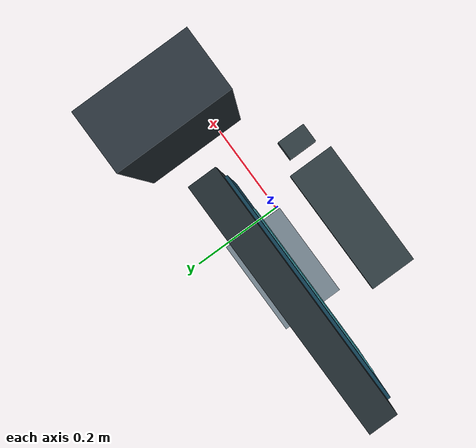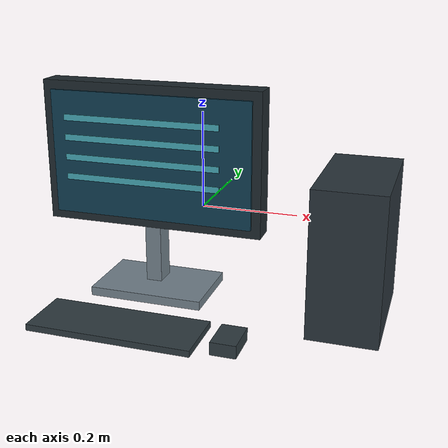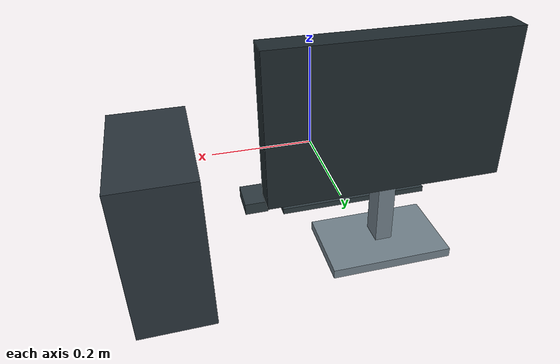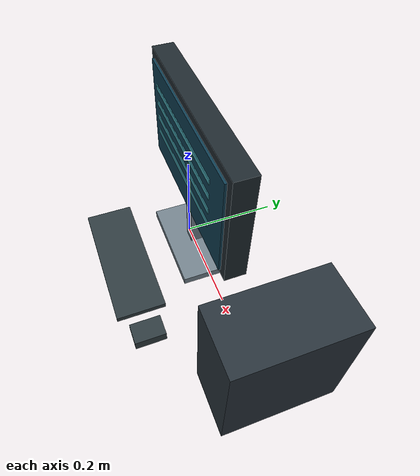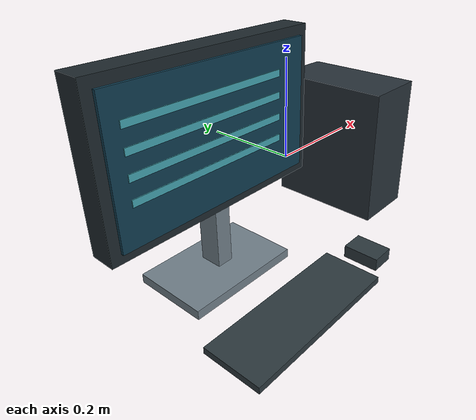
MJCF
<?xml version='1.0' encoding='utf-8'?>
<mujoco model="PC workstation | static procedural reference">
  <visual>
    <global offwidth="1000" offheight="600" />
  </visual>
  <asset>
    <texture type="skybox" builtin="gradient" rgb1=".92 .95 .97" rgb2=".70 .78 .84" width="512" height="3072" />
  </asset>
  <worldbody>
    <geom type="box" size="0.25 0.028 0.16" pos="-0.1375 0.0725 0.08" quat="1 0 0 0" rgba="0.119999997 0.159999996 0.180000007 1" contype="0" conaffinity="0" />
    <geom type="box" size="0.23 0.003 0.14" pos="-0.1375 0.0405 0.08" quat="1 0 0 0" rgba="0.0599999987 0.239999995 0.319999993 1" contype="0" conaffinity="0" />
    <geom type="box" size="0.18 0.001 0.007" pos="-0.1575 0.0365 0.16" quat="1 0 0 0" rgba="0.270000011 0.649999976 0.699999988 1" contype="0" conaffinity="0" />
    <geom type="box" size="0.18 0.001 0.007" pos="-0.1575 0.0365 0.115" quat="1 0 0 0" rgba="0.270000011 0.649999976 0.699999988 1" contype="0" conaffinity="0" />
    <geom type="box" size="0.18 0.001 0.007" pos="-0.1575 0.0365 0.07" quat="1 0 0 0" rgba="0.270000011 0.649999976 0.699999988 1" contype="0" conaffinity="0" />
    <geom type="box" size="0.18 0.001 0.007" pos="-0.1575 0.0365 0.025" quat="1 0 0 0" rgba="0.270000011 0.649999976 0.699999988 1" contype="0" conaffinity="0" />
    <geom type="box" size="0.018 0.025 0.08" pos="-0.1375 0.0725 -0.13" quat="1 0 0 0" rgba="0.449999988 0.50999999 0.550000012 1" contype="0" conaffinity="0" />
    <geom type="box" size="0.13 0.085 0.01" pos="-0.1375 0.0725 -0.229" quat="1 0 0 0" rgba="0.449999988 0.50999999 0.550000012 1" contype="0" conaffinity="0" />
    <geom type="box" size="0.18 0.065 0.007" pos="-0.1375 -0.1475 -0.23" quat="1 0 0 0" rgba="0.180000007 0.230000004 0.25 1" contype="0" conaffinity="0" />
    <geom type="box" size="0.027 0.04 0.014" pos="0.1025 -0.1475 -0.225" quat="1 0 0 0" rgba="0.180000007 0.230000004 0.25 1" contype="0" conaffinity="0" />
    <geom type="box" size="0.075 0.14 0.16" pos="0.3125 0.0725 -0.08" quat="1 0 0 0" rgba="0.159999996 0.200000003 0.230000004 1" contype="0" conaffinity="0" />
  </worldbody>
</mujoco>
